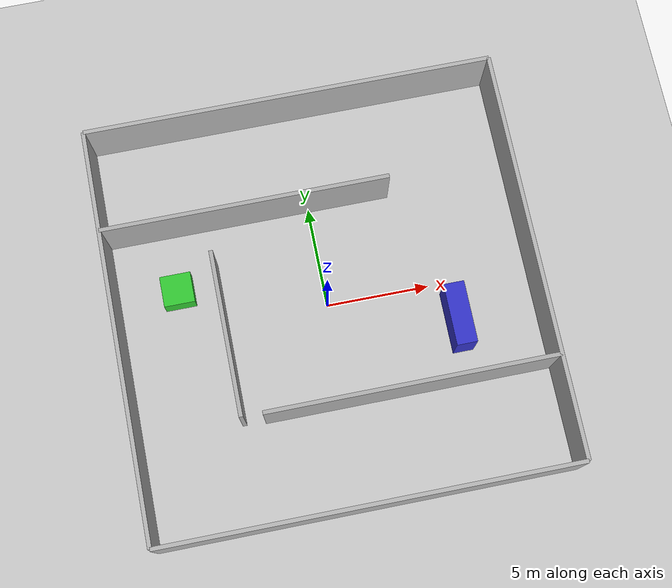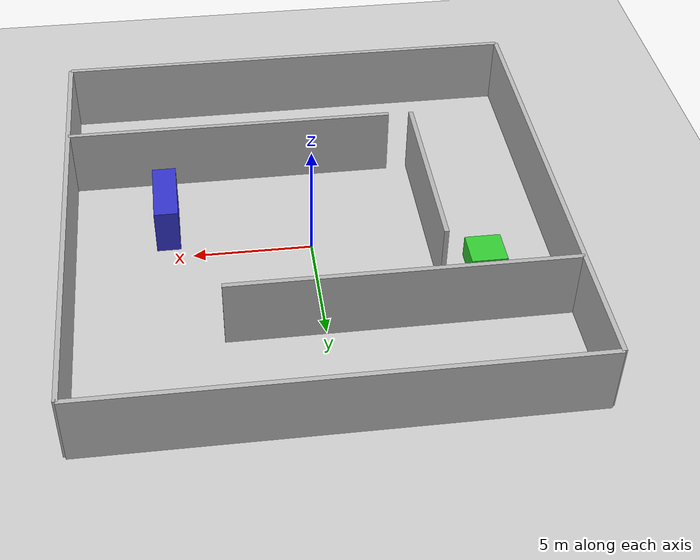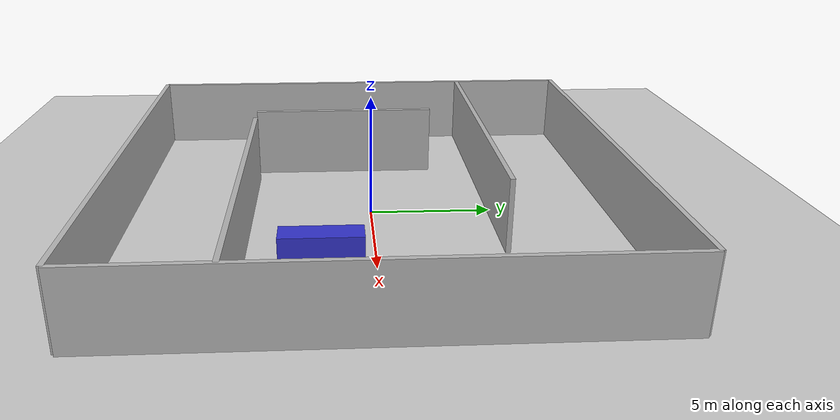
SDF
<?xml version="1.0" ?>
<sdf version="1.6">
  <world name="liosam_maze">
    <include><uri>model://sun</uri></include>
    <include><uri>model://ground_plane</uri></include>

    <model name="outer_wall_1"><pose>0 10 1.5 0 0 0</pose><static>true</static><link name="link"><collision name="c"><geometry><box><size>20 0.2 3</size></box></geometry></collision><visual name="v"><geometry><box><size>20 0.2 3</size></box></geometry></visual></link></model>
    <model name="outer_wall_2"><pose>0 -10 1.5 0 0 0</pose><static>true</static><link name="link"><collision name="c"><geometry><box><size>20 0.2 3</size></box></geometry></collision><visual name="v"><geometry><box><size>20 0.2 3</size></box></geometry></visual></link></model>
    <model name="outer_wall_3"><pose>10 0 1.5 0 0 1.5708</pose><static>true</static><link name="link"><collision name="c"><geometry><box><size>20 0.2 3</size></box></geometry></collision><visual name="v"><geometry><box><size>20 0.2 3</size></box></geometry></visual></link></model>
    <model name="outer_wall_4"><pose>-10 0 1.5 0 0 1.5708</pose><static>true</static><link name="link"><collision name="c"><geometry><box><size>20 0.2 3</size></box></geometry></collision><visual name="v"><geometry><box><size>20 0.2 3</size></box></geometry></visual></link></model>

    <model name="inner_wall_1"><pose>-3 5 1.5 0 0 0</pose><static>true</static><link name="link"><collision name="c"><geometry><box><size>14 0.2 3</size></box></geometry></collision><visual name="v"><geometry><box><size>14 0.2 3</size></box></geometry><material><ambient>0.7 0.7 0.7 1</ambient></material></visual></link></model>
    <model name="inner_wall_2"><pose>3 -5 1.5 0 0 0</pose><static>true</static><link name="link"><collision name="c"><geometry><box><size>14 0.2 3</size></box></geometry></collision><visual name="v"><geometry><box><size>14 0.2 3</size></box></geometry><material><ambient>0.7 0.7 0.7 1</ambient></material></visual></link></model>
    <model name="inner_wall_3"><pose>-5 -1 1.5 0 0 1.5708</pose><static>true</static><link name="link"><collision name="c"><geometry><box><size>8 0.2 3</size></box></geometry></collision><visual name="v"><geometry><box><size>8 0.2 3</size></box></geometry><material><ambient>0.7 0.7 0.7 1</ambient></material></visual></link></model>

    <model name="obs_1"><pose>-7 2 0.5 0 0 0</pose><static>true</static><link name="link"><collision name="c"><geometry><box><size>2 1 1</size></box></geometry></collision><visual  name="v"><geometry><box><size>1.5 1.5 1</size></box></geometry><material><ambient>0.2 0.8 0.2 1</ambient></material></visual></link></model>
    <model name="obs_3"><pose>6 -2 1 0 0 0</pose><static>true</static><link name="link"><collision name="c"><geometry><box><size>1 3 2</size></box></geometry></collision><visual name="v"><geometry><box><size>1 3 2</size></box></geometry><material><ambient>0.2 0.2 0.8 1</ambient></material></visual></link></model>
  </world>
</sdf>
